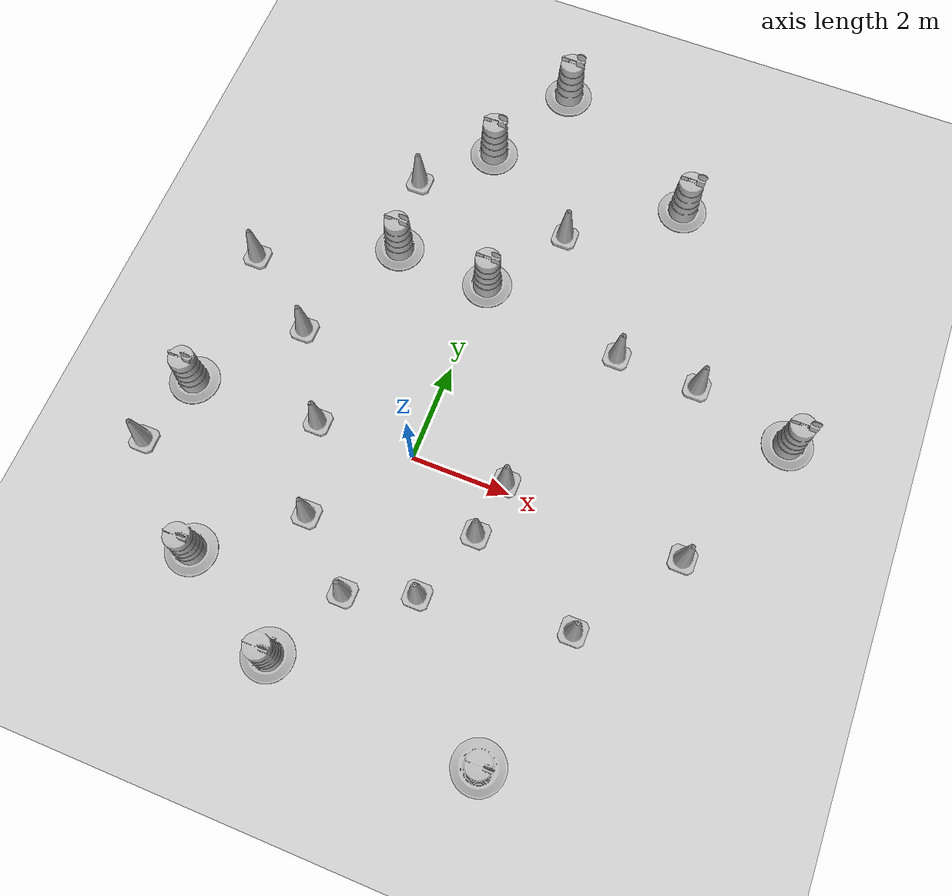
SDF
<sdf version="1.7">
 <world name="default">
  <light name="sun" type="directional">
   <pose>0 0 10 0 -0 0</pose>
   <diffuse>0.8 0.8 0.8 1</diffuse>
   <specular>0.2 0.2 0.2 1</specular>
   <attenuation>
    <range>1000</range>
    <constant>0.9</constant>
    <linear>0.01</linear>
    <quadratic>0.001</quadratic>
   </attenuation>
   <direction>-0.5 0.1 -0.9</direction>
   <spot><inner_angle>0</inner_angle><outer_angle>0</outer_angle><falloff>0</falloff></spot>
  </light>
  <model name="ground_plane">
   <static>1</static>
   <link name="link">
    <collision name="collision">
     <geometry><plane><normal>0 0 1</normal><size>100 100</size></plane></geometry>
     <surface><friction><ode><mu>100</mu><mu2>50</mu2></ode></friction></surface>
    </collision>
    <visual name="visual">
     <cast_shadows>0</cast_shadows>
     <geometry><plane><normal>0 0 1</normal><size>100 100</size></plane></geometry>
     <material>
      <script><uri>file://media/materials/scripts/gazebo.material</uri><name>Gazebo/Grey</name></script>
     </material>
    </visual>
   </link>
  </model>
  <gravity>0 0 -9.8</gravity>
  <magnetic_field>6e-06 2.3e-05 -4.2e-05</magnetic_field>
  <atmosphere type="adiabatic"/>
  <physics type="ode">
   <max_step_size>0.001</max_step_size>
   <real_time_factor>1</real_time_factor>
   <real_time_update_rate>1000</real_time_update_rate>
  </physics>
  <scene><ambient>0.4 0.4 0.4 1</ambient><background>0.7 0.7 0.7 1</background><shadows>1</shadows></scene>
  <audio><device>default</device></audio>
  <spherical_coordinates>
   <surface_model>EARTH_WGS84</surface_model>
   <latitude_deg>0</latitude_deg>
   <longitude_deg>0</longitude_deg>
   <elevation>0</elevation>
   <heading_deg>0</heading_deg>
  </spherical_coordinates>
  <model name="Construction Cone">
   <link name="link">
    <collision name="collision">
     <geometry>
      <mesh><scale>10 10 10</scale><uri>model://construction_cone/meshes/construction_cone.dae</uri></mesh>
     </geometry>
    </collision>
    <visual name="visual">
     <geometry>
      <mesh><scale>10 10 10</scale><uri>model://construction_cone/meshes/construction_cone.dae</uri></mesh>
     </geometry>
    </visual>
    <inertial>
     <inertia><ixx>1</ixx><ixy>0</ixy><ixz>0</ixz><iyy>1</iyy><iyz>0</iyz><izz>1</izz></inertia>
     <mass>1</mass>
    </inertial>
   </link>
   <pose>-0.192853 -2.88147 -8e-06 -5e-06 -0 -0</pose>
  </model>
  <model name="Construction Cone_0">
   <link name="link">
    <collision name="collision">
     <geometry>
      <mesh><scale>10 10 10</scale><uri>model://construction_cone/meshes/construction_cone.dae</uri></mesh>
     </geometry>
    </collision>
    <visual name="visual">
     <geometry>
      <mesh><scale>10 10 10</scale><uri>model://construction_cone/meshes/construction_cone.dae</uri></mesh>
     </geometry>
    </visual>
    <inertial>
     <inertia><ixx>1</ixx><ixy>0</ixy><ixz>0</ixz><iyy>1</iyy><iyz>0</iyz><izz>1</izz></inertia>
     <mass>1</mass>
    </inertial>
   </link>
   <pose>1.10469 -2.41927 -0 0 -0 0</pose>
  </model>
  <model name="Construction Cone_1">
   <link name="link">
    <collision name="collision">
     <geometry>
      <mesh><scale>10 10 10</scale><uri>model://construction_cone/meshes/construction_cone.dae</uri></mesh>
     </geometry>
    </collision>
    <visual name="visual">
     <geometry>
      <mesh><scale>10 10 10</scale><uri>model://construction_cone/meshes/construction_cone.dae</uri></mesh>
     </geometry>
    </visual>
    <inertial>
     <inertia><ixx>1</ixx><ixy>0</ixy><ixz>0</ixz><iyy>1</iyy><iyz>0</iyz><izz>1</izz></inertia>
     <mass>1</mass>
    </inertial>
   </link>
   <pose>1.69258 -0.962899 -1e-06 1e-06 -2e-06 -0</pose>
  </model>
  <model name="Construction Cone_1_clone">
   <link name="link">
    <collision name="collision">
     <geometry>
      <mesh><scale>10 10 10</scale><uri>model://construction_cone/meshes/construction_cone.dae</uri></mesh>
     </geometry>
    </collision>
    <visual name="visual">
     <geometry>
      <mesh><scale>10 10 10</scale><uri>model://construction_cone/meshes/construction_cone.dae</uri></mesh>
     </geometry>
    </visual>
    <inertial>
     <inertia><ixx>1</ixx><ixy>0</ixy><ixz>0</ixz><iyy>1</iyy><iyz>0</iyz><izz>1</izz></inertia>
     <mass>1</mass>
    </inertial>
   </link>
   <pose>1.85787 0.18254 -0 0 -1e-06 0</pose>
  </model>
  <model name="Construction Cone_1_clone_0">
   <link name="link">
    <collision name="collision">
     <geometry>
      <mesh><scale>10 10 10</scale><uri>model://construction_cone/meshes/construction_cone.dae</uri></mesh>
     </geometry>
    </collision>
    <visual name="visual">
     <geometry>
      <mesh><scale>10 10 10</scale><uri>model://construction_cone/meshes/construction_cone.dae</uri></mesh>
     </geometry>
    </visual>
    <inertial>
     <inertia><ixx>1</ixx><ixy>0</ixy><ixz>0</ixz><iyy>1</iyy><iyz>0</iyz><izz>1</izz></inertia>
     <mass>1</mass>
    </inertial>
   </link>
   <pose>-1.4304 -1.76921 0 -1e-06 0 0</pose>
  </model>
  <model name="Construction Cone_1_clone_1">
   <link name="link">
    <collision name="collision">
     <geometry>
      <mesh><scale>10 10 10</scale><uri>model://construction_cone/meshes/construction_cone.dae</uri></mesh>
     </geometry>
    </collision>
    <visual name="visual">
     <geometry>
      <mesh><scale>10 10 10</scale><uri>model://construction_cone/meshes/construction_cone.dae</uri></mesh>
     </geometry>
    </visual>
    <inertial>
     <inertia><ixx>1</ixx><ixy>0</ixy><ixz>0</ixz><iyy>1</iyy><iyz>0</iyz><izz>1</izz></inertia>
     <mass>1</mass>
    </inertial>
   </link>
   <pose>-3.07315 1.70852 -0 0 -1e-06 0</pose>
  </model>
  <model name="Construction Cone_1_clone_2">
   <link name="link">
    <collision name="collision">
     <geometry>
      <mesh><scale>10 10 10</scale><uri>model://construction_cone/meshes/construction_cone.dae</uri></mesh>
     </geometry>
    </collision>
    <visual name="visual">
     <geometry>
      <mesh><scale>10 10 10</scale><uri>model://construction_cone/meshes/construction_cone.dae</uri></mesh>
     </geometry>
    </visual>
    <inertial>
     <inertia><ixx>1</ixx><ixy>0</ixy><ixz>0</ixz><iyy>1</iyy><iyz>0</iyz><izz>1</izz></inertia>
     <mass>1</mass>
    </inertial>
   </link>
   <pose>-2.22057 5.75091 -0 0 -1e-06 0</pose>
  </model>
  <model name="Construction Cone_1_clone_3">
   <link name="link">
    <collision name="collision">
     <geometry>
      <mesh><scale>10 10 10</scale><uri>model://construction_cone/meshes/construction_cone.dae</uri></mesh>
     </geometry>
    </collision>
    <visual name="visual">
     <geometry>
      <mesh><scale>10 10 10</scale><uri>model://construction_cone/meshes/construction_cone.dae</uri></mesh>
     </geometry>
    </visual>
    <inertial>
     <inertia><ixx>1</ixx><ixy>0</ixy><ixz>0</ixz><iyy>1</iyy><iyz>0</iyz><izz>1</izz></inertia>
     <mass>1</mass>
    </inertial>
   </link>
   <pose>1.11431 5.63319 -0 0 -1e-06 0</pose>
  </model>
  <model name="Construction Cone_1_clone_4">
   <link name="link">
    <collision name="collision">
     <geometry>
      <mesh><scale>10 10 10</scale><uri>model://construction_cone/meshes/construction_cone.dae</uri></mesh>
     </geometry>
    </collision>
    <visual name="visual">
     <geometry>
      <mesh><scale>10 10 10</scale><uri>model://construction_cone/meshes/construction_cone.dae</uri></mesh>
     </geometry>
    </visual>
    <inertial>
     <inertia><ixx>1</ixx><ixy>0</ixy><ixz>0</ixz><iyy>1</iyy><iyz>0</iyz><izz>1</izz></inertia>
     <mass>1</mass>
    </inertial>
   </link>
   <pose>4.68765 3.38976 -0 0 -1e-06 0</pose>
  </model>
  <model name="Construction Cone_1_clone_5">
   <link name="link">
    <collision name="collision">
     <geometry>
      <mesh><scale>10 10 10</scale><uri>model://construction_cone/meshes/construction_cone.dae</uri></mesh>
     </geometry>
    </collision>
    <visual name="visual">
     <geometry>
      <mesh><scale>10 10 10</scale><uri>model://construction_cone/meshes/construction_cone.dae</uri></mesh>
     </geometry>
    </visual>
    <inertial>
     <inertia><ixx>1</ixx><ixy>0</ixy><ixz>0</ixz><iyy>1</iyy><iyz>0</iyz><izz>1</izz></inertia>
     <mass>1</mass>
    </inertial>
   </link>
   <pose>5.45128 -0 -0 0 -1e-06 0</pose>
  </model>
  <model name="Construction Cone_1_clone_6">
   <link name="link">
    <collision name="collision">
     <geometry>
      <mesh><scale>10 10 10</scale><uri>model://construction_cone/meshes/construction_cone.dae</uri></mesh>
     </geometry>
    </collision>
    <visual name="visual">
     <geometry>
      <mesh><scale>10 10 10</scale><uri>model://construction_cone/meshes/construction_cone.dae</uri></mesh>
     </geometry>
    </visual>
    <inertial>
     <inertia><ixx>1</ixx><ixy>0</ixy><ixz>0</ixz><iyy>1</iyy><iyz>0</iyz><izz>1</izz></inertia>
     <mass>1</mass>
    </inertial>
   </link>
   <pose>4 -2 -0 0 -1e-06 0</pose>
  </model>
  <model name="Construction Cone_1_clone_7">
   <link name="link">
    <collision name="collision">
     <geometry>
      <mesh><scale>10 10 10</scale><uri>model://construction_cone/meshes/construction_cone.dae</uri></mesh>
     </geometry>
    </collision>
    <visual name="visual">
     <geometry>
      <mesh><scale>10 10 10</scale><uri>model://construction_cone/meshes/construction_cone.dae</uri></mesh>
     </geometry>
    </visual>
    <inertial>
     <inertia><ixx>1</ixx><ixy>0</ixy><ixz>0</ixz><iyy>1</iyy><iyz>0</iyz><izz>1</izz></inertia>
     <mass>1</mass>
    </inertial>
   </link>
   <pose>3 3.4479 -0 0 -1e-06 0</pose>
  </model>
  <model name="Construction Cone_1_clone_8">
   <link name="link">
    <collision name="collision">
     <geometry>
      <mesh><scale>10 10 10</scale><uri>model://construction_cone/meshes/construction_cone.dae</uri></mesh>
     </geometry>
    </collision>
    <visual name="visual">
     <geometry>
      <mesh><scale>10 10 10</scale><uri>model://construction_cone/meshes/construction_cone.dae</uri></mesh>
     </geometry>
    </visual>
    <inertial>
     <inertia><ixx>1</ixx><ixy>0</ixy><ixz>0</ixz><iyy>1</iyy><iyz>0</iyz><izz>1</izz></inertia>
     <mass>1</mass>
    </inertial>
   </link>
   <pose>-2 0 -0 0 -1e-06 0</pose>
  </model>
  <model name="Construction Cone_1_clone_9">
   <link name="link">
    <collision name="collision">
     <geometry>
      <mesh><scale>10 10 10</scale><uri>model://construction_cone/meshes/construction_cone.dae</uri></mesh>
     </geometry>
    </collision>
    <visual name="visual">
     <geometry>
      <mesh><scale>10 10 10</scale><uri>model://construction_cone/meshes/construction_cone.dae</uri></mesh>
     </geometry>
    </visual>
    <inertial>
     <inertia><ixx>1</ixx><ixy>0</ixy><ixz>0</ixz><iyy>1</iyy><iyz>0</iyz><izz>1</izz></inertia>
     <mass>1</mass>
    </inertial>
   </link>
   <pose>-5 -1.55744 -0 0 -1e-06 0</pose>
  </model>
  <model name="Construction Cone_1_clone_10">
   <link name="link">
    <collision name="collision">
     <geometry>
      <mesh><scale>10 10 10</scale><uri>model://construction_cone/meshes/construction_cone.dae</uri></mesh>
     </geometry>
    </collision>
    <visual name="visual">
     <geometry>
      <mesh><scale>10 10 10</scale><uri>model://construction_cone/meshes/construction_cone.dae</uri></mesh>
     </geometry>
    </visual>
    <inertial>
     <inertia><ixx>1</ixx><ixy>0</ixy><ixz>0</ixz><iyy>1</iyy><iyz>0</iyz><izz>1</izz></inertia>
     <mass>1</mass>
    </inertial>
   </link>
   <pose>-4.68065 2.87319 -0 0 -0 0</pose>
  </model>
  <model name="Construction Barrel">
   <link name="link">
    <inertial>
     <pose>0 0 0.4 0 -0 0</pose>
     <mass>500</mass>
     <inertia><ixx>51.2096</ixx><iyy>51.2096</iyy><izz>25</izz><ixy>0</ixy><ixz>0</ixz><iyz>0</iyz></inertia>
    </inertial>
    <collision name="collision">
     <geometry><mesh><uri>model://construction_barrel/meshes/construction_barrel.dae</uri></mesh></geometry>
    </collision>
    <visual name="visual">
     <geometry><mesh><uri>model://construction_barrel/meshes/construction_barrel.dae</uri></mesh></geometry>
    </visual>
   </link>
   <pose>-3.1625 -3.17447 -0 0 0 -1.1e-05</pose>
  </model>
  <model name="Construction Barrel_clone">
   <link name="link">
    <inertial>
     <pose>0 0 0.4 0 -0 0</pose>
     <mass>500</mass>
     <inertia><ixx>51.2096</ixx><iyy>51.2096</iyy><izz>25</izz><ixy>0</ixy><ixz>0</ixz><iyz>0</iyz></inertia>
    </inertial>
    <collision name="collision">
     <geometry><mesh><uri>model://construction_barrel/meshes/construction_barrel.dae</uri></mesh></geometry>
    </collision>
    <visual name="visual">
     <geometry><mesh><uri>model://construction_barrel/meshes/construction_barrel.dae</uri></mesh></geometry>
    </visual>
   </link>
   <pose>-4.65236 -0.082305 -0 0 0 -1.5e-05</pose>
  </model>
  <model name="Construction Barrel_clone_0">
   <link name="link">
    <inertial>
     <pose>0 0 0.4 0 -0 0</pose>
     <mass>500</mass>
     <inertia><ixx>51.2096</ixx><iyy>51.2096</iyy><izz>25</izz><ixy>0</ixy><ixz>0</ixz><iyz>0</iyz></inertia>
    </inertial>
    <collision name="collision">
     <geometry><mesh><uri>model://construction_barrel/meshes/construction_barrel.dae</uri></mesh></geometry>
    </collision>
    <visual name="visual">
     <geometry><mesh><uri>model://construction_barrel/meshes/construction_barrel.dae</uri></mesh></geometry>
    </visual>
   </link>
   <pose>-2.00264 4.11808 -1e-06 4e-06 -2e-06 -1.3e-05</pose>
  </model>
  <model name="Construction Barrel_clone_1">
   <link name="link">
    <inertial>
     <pose>0 0 0.4 0 -0 0</pose>
     <mass>500</mass>
     <inertia><ixx>51.2096</ixx><iyy>51.2096</iyy><izz>25</izz><ixy>0</ixy><ixz>0</ixz><iyz>0</iyz></inertia>
    </inertial>
    <collision name="collision">
     <geometry><mesh><uri>model://construction_barrel/meshes/construction_barrel.dae</uri></mesh></geometry>
    </collision>
    <visual name="visual">
     <geometry><mesh><uri>model://construction_barrel/meshes/construction_barrel.dae</uri></mesh></geometry>
    </visual>
   </link>
   <pose>-5.8e-05 8.99999 -2e-06 -7e-06 -4e-06 -1.3e-05</pose>
  </model>
  <model name="Construction Barrel_clone_2">
   <link name="link">
    <inertial>
     <pose>0 0 0.4 0 -0 0</pose>
     <mass>500</mass>
     <inertia><ixx>51.2096</ixx><iyy>51.2096</iyy><izz>25</izz><ixy>0</ixy><ixz>0</ixz><iyz>0</iyz></inertia>
    </inertial>
    <collision name="collision">
     <geometry><mesh><uri>model://construction_barrel/meshes/construction_barrel.dae</uri></mesh></geometry>
    </collision>
    <visual name="visual">
     <geometry><mesh><uri>model://construction_barrel/meshes/construction_barrel.dae</uri></mesh></geometry>
    </visual>
   </link>
   <pose>-1.00005 -4.40014 -0 0 0 -1.1e-05</pose>
  </model>
  <model name="Construction Barrel_clone_3">
   <link name="link">
    <inertial>
     <pose>0 0 0.4 0 -0 0</pose>
     <mass>500</mass>
     <inertia><ixx>51.2096</ixx><iyy>51.2096</iyy><izz>25</izz><ixy>0</ixy><ixz>0</ixz><iyz>0</iyz></inertia>
    </inertial>
    <collision name="collision">
     <geometry><mesh><uri>model://construction_barrel/meshes/construction_barrel.dae</uri></mesh></geometry>
    </collision>
    <visual name="visual">
     <geometry><mesh><uri>model://construction_barrel/meshes/construction_barrel.dae</uri></mesh></geometry>
    </visual>
   </link>
   <pose>3.24785 -4.79869 2e-06 2e-06 4e-06 -9e-06</pose>
  </model>
  <model name="Construction Barrel_clone_4">
   <link name="link">
    <inertial>
     <pose>0 0 0.4 0 -0 0</pose>
     <mass>500</mass>
     <inertia><ixx>51.2096</ixx><iyy>51.2096</iyy><izz>25</izz><ixy>0</ixy><ixz>0</ixz><iyz>0</iyz></inertia>
    </inertial>
    <collision name="collision">
     <geometry><mesh><uri>model://construction_barrel/meshes/construction_barrel.dae</uri></mesh></geometry>
    </collision>
    <visual name="visual">
     <geometry><mesh><uri>model://construction_barrel/meshes/construction_barrel.dae</uri></mesh></geometry>
    </visual>
   </link>
   <pose>6.68411 2.88683 0 0 0 -9e-06</pose>
  </model>
  <model name="Construction Barrel_clone_5">
   <link name="link">
    <inertial>
     <pose>0 0 0.4 0 -0 0</pose>
     <mass>500</mass>
     <inertia><ixx>51.2096</ixx><iyy>51.2096</iyy><izz>25</izz><ixy>0</ixy><ixz>0</ixz><iyz>0</iyz></inertia>
    </inertial>
    <collision name="collision">
     <geometry><mesh><uri>model://construction_barrel/meshes/construction_barrel.dae</uri></mesh></geometry>
    </collision>
    <visual name="visual">
     <geometry><mesh><uri>model://construction_barrel/meshes/construction_barrel.dae</uri></mesh></geometry>
    </visual>
   </link>
   <pose>3.2184 7.12731 -3e-06 -6e-06 -5e-06 -7e-06</pose>
  </model>
  <model name="Construction Barrel_clone_6">
   <link name="link">
    <inertial>
     <pose>0 0 0.4 0 -0 0</pose>
     <mass>500</mass>
     <inertia><ixx>51.2096</ixx><iyy>51.2096</iyy><izz>25</izz><ixy>0</ixy><ixz>0</ixz><iyz>0</iyz></inertia>
    </inertial>
    <collision name="collision">
     <geometry><mesh><uri>model://construction_barrel/meshes/construction_barrel.dae</uri></mesh></geometry>
    </collision>
    <visual name="visual">
     <geometry><mesh><uri>model://construction_barrel/meshes/construction_barrel.dae</uri></mesh></geometry>
    </visual>
   </link>
   <pose>-1.00003 6.99999 -0 1e-06 -1e-06 -7e-06</pose>
  </model>
  <model name="Construction Barrel_clone_7">
   <link name="link">
    <inertial>
     <pose>0 0 0.4 0 -0 0</pose>
     <mass>500</mass>
     <inertia><ixx>51.2096</ixx><iyy>51.2096</iyy><izz>25</izz><ixy>0</ixy><ixz>0</ixz><iyz>0</iyz></inertia>
    </inertial>
    <collision name="collision">
     <geometry><mesh><uri>model://construction_barrel/meshes/construction_barrel.dae</uri></mesh></geometry>
    </collision>
    <visual name="visual">
     <geometry><mesh><uri>model://construction_barrel/meshes/construction_barrel.dae</uri></mesh></geometry>
    </visual>
   </link>
   <pose>-1.2e-05 4 -0 1e-06 -1e-06 -6e-06</pose>
  </model>
 </world>
</sdf>
